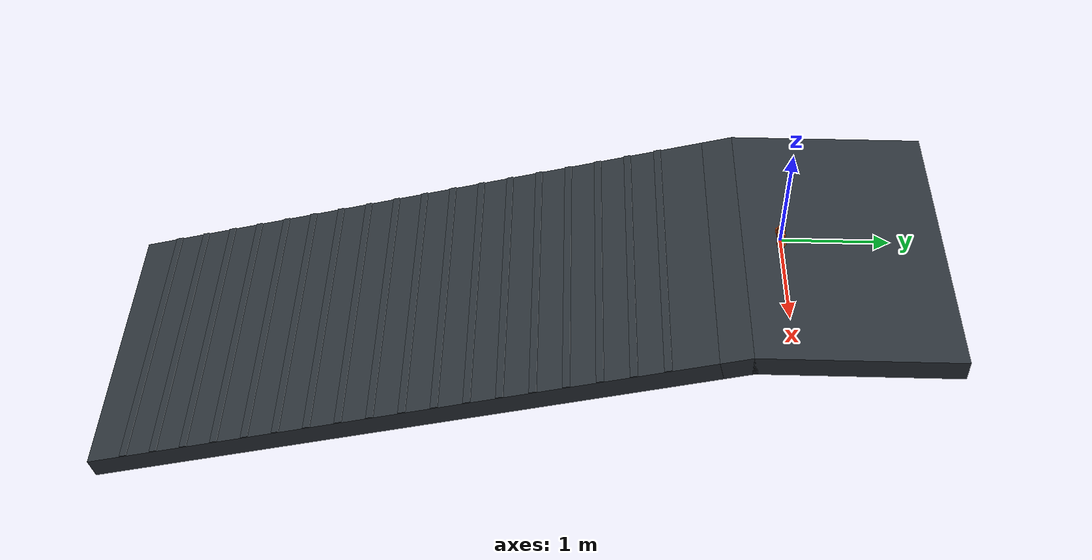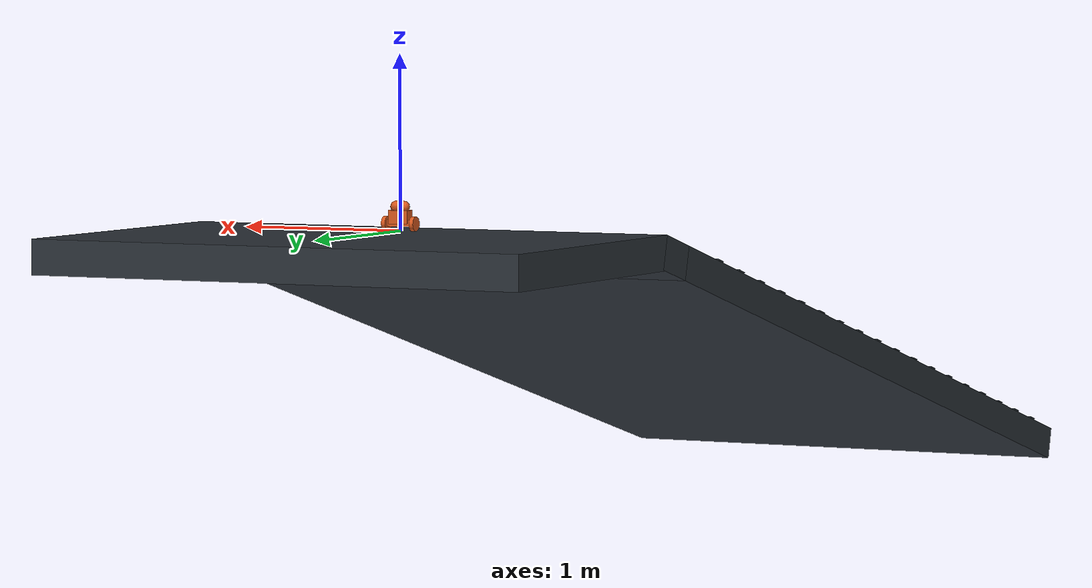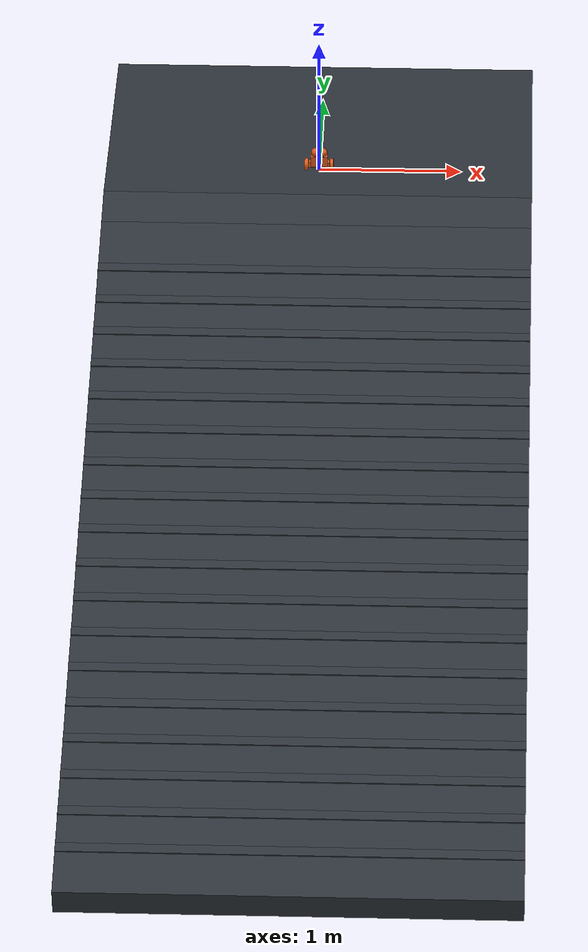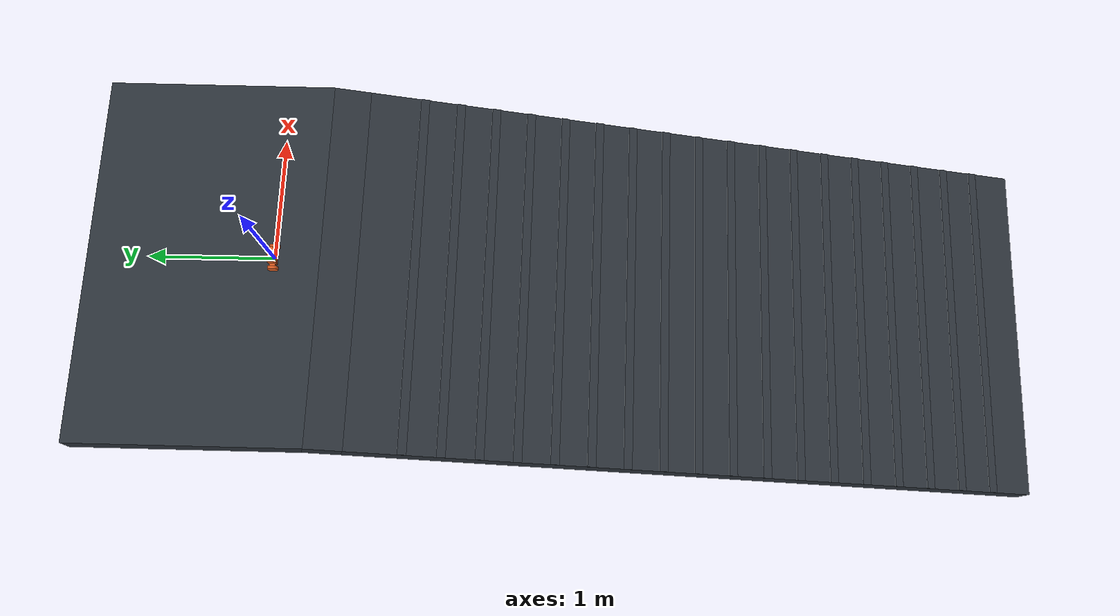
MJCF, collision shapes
<mujoco model="Stage4B rtrain_078_m15p0">
  <compiler angle="radian" meshdir="../../../../assets/upstream_local" />
  <option timestep="0.001" integrator="implicitfast" gravity="0 0 -9.81" />
  <statistic center="0 0 0.05" extent="0.28" />
  <default>
    <default class="visual">
      <geom contype="0" conaffinity="0" group="2" />
    </default>
    <default class="collision">
      <geom group="3" rgba="0.85 0.35 0.12 0.25" solref="0.005 1" solimp="0.9 0.95 0.001" />
    </default>
  </default>
  <asset>
    <texture name="ground_tex" type="2d" builtin="checker" rgb1="0.22 0.25 0.28" rgb2="0.12 0.14 0.16" width="256" height="256" />
    <material name="ground_mat" texture="ground_tex" texrepeat="4 4" reflectance="0.15" />
    <mesh name="main_frame_mesh" file="main_frame.stl" scale="0.001 0.001 0.001" />
    <mesh name="wheel_base_mesh" file="wheel_base.stl" scale="0.001 0.001 0.001" />
    <mesh name="cover_mesh" file="cover.stl" scale="0.001 0.001 0.001" />
    <mesh name="motor_left_mesh" file="motor_left.stl" scale="0.001 0.001 0.001" />
    <mesh name="motor_right_mesh" file="motor_right.stl" scale="0.001 0.001 0.001" />
    <mesh name="mc33926_mesh" file="mc33926.stl" scale="0.001 0.001 0.001" />
    <mesh name="wheel_mesh" file="wheel.stl" scale="0.001 0.001 0.001" />
    <mesh name="adapter_left_mesh" file="adapter_left.stl" scale="0.001 0.001 0.001" />
    <mesh name="adapter_right_mesh" file="adapter_right.stl" scale="0.001 0.001 0.001" />
  </asset>
  <worldbody>
    <light pos="0 -0.5 0.8" dir="0 0.6 -1" diffuse="0.8 0.8 0.8" />
    <geom name="terrain_flat" type="box" pos="0 0.575 -0.1" size="1.5 0.925 0.1" material="ground_mat" friction="0.10396593 0.005 0.0001" condim="3" />
    <geom name="terrain_transition" type="box" pos="0 -0.469006969433 -0.135415439394" euler="0.261799387799 0 0" size="1.5 0.15 0.1" material="ground_mat" friction="0.10396593 0.005 0.0001" condim="3" />
    <geom name="terrain_constant_grade" type="box" pos="0 -3.51167332224 -0.950695431467" euler="0.261799387799 0 0" size="1.5 3 0.1" material="ground_mat" friction="0.10396593 0.005 0.0001" condim="3" />
    <geom name="terrain_rough_00" type="box" pos="0 -1.07565217174 -0.189606705301" euler="0.261799387799 0 0" size="1.5 0.0355033957139 0.00466658867906" material="ground_mat" friction="0.10396593 0.005 0.0001" condim="3" />
    <geom name="terrain_rough_01" type="box" pos="0 -1.37023646616 -0.268540329094" euler="0.261799387799 0 0" size="1.5 0.0355033957139 0.00466658867906" material="ground_mat" friction="0.10396593 0.005 0.0001" condim="3" />
    <geom name="terrain_rough_02" type="box" pos="0 -1.66482076058 -0.347473952887" euler="0.261799387799 0 0" size="1.5 0.0355033957139 0.00466658867906" material="ground_mat" friction="0.10396593 0.005 0.0001" condim="3" />
    <geom name="terrain_rough_03" type="box" pos="0 -1.959405055 -0.42640757668" euler="0.261799387799 0 0" size="1.5 0.0355033957139 0.00466658867906" material="ground_mat" friction="0.10396593 0.005 0.0001" condim="3" />
    <geom name="terrain_rough_04" type="box" pos="0 -2.25398934942 -0.505341200472" euler="0.261799387799 0 0" size="1.5 0.0355033957139 0.00466658867906" material="ground_mat" friction="0.10396593 0.005 0.0001" condim="3" />
    <geom name="terrain_rough_05" type="box" pos="0 -2.54857364384 -0.584274824265" euler="0.261799387799 0 0" size="1.5 0.0355033957139 0.00466658867906" material="ground_mat" friction="0.10396593 0.005 0.0001" condim="3" />
    <geom name="terrain_rough_06" type="box" pos="0 -2.84315793826 -0.663208448058" euler="0.261799387799 0 0" size="1.5 0.0355033957139 0.00466658867906" material="ground_mat" friction="0.10396593 0.005 0.0001" condim="3" />
    <geom name="terrain_rough_07" type="box" pos="0 -3.13774223269 -0.742142071851" euler="0.261799387799 0 0" size="1.5 0.0355033957139 0.00466658867906" material="ground_mat" friction="0.10396593 0.005 0.0001" condim="3" />
    <geom name="terrain_rough_08" type="box" pos="0 -3.43232652711 -0.821075695644" euler="0.261799387799 0 0" size="1.5 0.0355033957139 0.00466658867906" material="ground_mat" friction="0.10396593 0.005 0.0001" condim="3" />
    <geom name="terrain_rough_09" type="box" pos="0 -3.72691082153 -0.900009319437" euler="0.261799387799 0 0" size="1.5 0.0355033957139 0.00466658867906" material="ground_mat" friction="0.10396593 0.005 0.0001" condim="3" />
    <geom name="terrain_rough_10" type="box" pos="0 -4.02149511595 -0.978942943229" euler="0.261799387799 0 0" size="1.5 0.0355033957139 0.00466658867906" material="ground_mat" friction="0.10396593 0.005 0.0001" condim="3" />
    <geom name="terrain_rough_11" type="box" pos="0 -4.31607941037 -1.05787656702" euler="0.261799387799 0 0" size="1.5 0.0355033957139 0.00466658867906" material="ground_mat" friction="0.10396593 0.005 0.0001" condim="3" />
    <geom name="terrain_rough_12" type="box" pos="0 -4.61066370479 -1.13681019082" euler="0.261799387799 0 0" size="1.5 0.0355033957139 0.00466658867906" material="ground_mat" friction="0.10396593 0.005 0.0001" condim="3" />
    <geom name="terrain_rough_13" type="box" pos="0 -4.90524799921 -1.21574381461" euler="0.261799387799 0 0" size="1.5 0.0355033957139 0.00466658867906" material="ground_mat" friction="0.10396593 0.005 0.0001" condim="3" />
    <geom name="terrain_rough_14" type="box" pos="0 -5.19983229363 -1.2946774384" euler="0.261799387799 0 0" size="1.5 0.0355033957139 0.00466658867906" material="ground_mat" friction="0.10396593 0.005 0.0001" condim="3" />
    <geom name="terrain_rough_15" type="box" pos="0 -5.49441658805 -1.37361106219" euler="0.261799387799 0 0" size="1.5 0.0355033957139 0.00466658867906" material="ground_mat" friction="0.10396593 0.005 0.0001" condim="3" />
    <geom name="terrain_rough_16" type="box" pos="0 -5.78900088247 -1.45254468599" euler="0.261799387799 0 0" size="1.5 0.0355033957139 0.00466658867906" material="ground_mat" friction="0.10396593 0.005 0.0001" condim="3" />
    <geom name="terrain_rough_17" type="box" pos="0 -6.08358517689 -1.53147830978" euler="0.261799387799 0 0" size="1.5 0.0355033957139 0.00466658867906" material="ground_mat" friction="0.10396593 0.005 0.0001" condim="3" />
    <body name="chassis" pos="0 0 0.043">
      <freejoint name="root" />
      <inertial pos="0.0001592717873 -0.001394466535 0.03368627387" mass="0.8173706489" fullinertia="0.0009508052638 0.001636345835 0.0009938057434 -1.163464906e-07 -4.840496598e-06 3.454944565e-05" />
      <geom name="main_frame_visual" class="visual" type="mesh" mesh="main_frame_mesh" rgba="0.12 0.42 0.72 1" />
      <geom name="wheel_base_visual" class="visual" type="mesh" mesh="wheel_base_mesh" rgba="0.95 0.50 0.10 1" />
      <geom name="cover_visual" class="visual" type="mesh" mesh="cover_mesh" rgba="0.18 0.72 0.32 0.72" />
      <geom name="motor_left_visual" class="visual" type="mesh" mesh="motor_left_mesh" rgba="0.45 0.47 0.50 1" />
      <geom name="motor_right_visual" class="visual" type="mesh" mesh="motor_right_mesh" rgba="0.45 0.47 0.50 1" />
      <geom name="mc33926_visual" class="visual" type="mesh" mesh="mc33926_mesh" rgba="0.08 0.36 0.18 1" />
      <geom name="battery_1_visual" class="visual" type="box" pos="0 -0.012 0.038" size="0.035 0.007 0.025" rgba="0.15 0.25 0.75 1" />
      <geom name="battery_2_visual" class="visual" type="box" pos="0 0.012 0.038" size="0.035 0.007 0.025" rgba="0.15 0.25 0.75 1" />
      <geom name="electronics_lump_visual" class="visual" type="box" pos="0 -0.024 0.067" size="0.035 0.006 0.0425" rgba="0.10 0.42 0.20 0.65" />
      <geom name="wheel_base_collision" class="collision" type="box" pos="0 0.0005 0.0042" size="0.074 0.0201 0.0198" />
      <geom name="lower_chassis_collision" class="collision" type="box" pos="0.001 -0.0015 0.038" size="0.0595 0.0325 0.038" />
      <geom name="upper_chassis_collision" class="collision" type="capsule" fromto="-0.024 -0.0015 0.096 0.026 -0.0015 0.096" size="0.033" />
      <site name="imu_site" type="box" pos="0 0 0.020" quat="1 0 0 0" size="0.004 0.003 0.001" rgba="1 0.15 0.05 1" />
      <body name="left_wheel" pos="-0.0885 0 0">
        <joint name="left_wheel_hinge" type="hinge" axis="1 0 0" damping="0.002" frictionloss="0.002" />
        <inertial pos="0.001407549168 -2.310217342e-08 4.024972882e-05" mass="0.1051" fullinertia="8.559060347e-05 4.760138372e-05 4.763051958e-05 2.677568832e-11 -3.525425309e-08 -1.463149106e-11" />
        <geom name="left_wheel_visual" class="visual" type="mesh" mesh="wheel_mesh" rgba="0.04 0.05 0.06 1" />
        <geom name="left_adapter_visual" class="visual" type="mesh" mesh="adapter_left_mesh" rgba="0.12 0.48 0.82 1" />
        <geom name="left_wheel_collision" class="collision" type="cylinder" size="0.042 0.012" quat="0.7071067812 0 0.7071067812 0" friction="0.10396593 0.005 0.0001" />
      </body>
      <body name="right_wheel" pos="0.0885 0 0">
        <joint name="right_wheel_hinge" type="hinge" axis="1 0 0" damping="0.002" frictionloss="0.002" />
        <inertial pos="-0.001407437868 -2.310217342e-08 -4.019113045e-05" mass="0.1051" fullinertia="8.559060397e-05 4.760141714e-05 4.763055251e-05 -2.601653908e-11 -3.526339188e-08 1.57007511e-11" />
        <geom name="right_wheel_visual" class="visual" type="mesh" mesh="wheel_mesh" rgba="0.04 0.05 0.06 1" />
        <geom name="right_adapter_visual" class="visual" type="mesh" mesh="adapter_right_mesh" rgba="0.12 0.48 0.82 1" />
        <geom name="right_wheel_collision" class="collision" type="cylinder" size="0.042 0.012" quat="0.7071067812 0 0.7071067812 0" friction="0.10396593 0.005 0.0001" />
      </body>
    </body>
  </worldbody>
  <actuator>
    <motor name="left_wheel_torque" joint="left_wheel_hinge" gear="1" ctrllimited="true" ctrlrange="-0.63 0.63" forcelimited="true" forcerange="-0.63 0.63" />
    <motor name="right_wheel_torque" joint="right_wheel_hinge" gear="1" ctrllimited="true" ctrlrange="-0.63 0.63" forcelimited="true" forcerange="-0.63 0.63" />
  </actuator>
  <sensor>
    <accelerometer name="imu_accelerometer" site="imu_site" />
    <gyro name="imu_gyro" site="imu_site" />
    <jointpos name="left_wheel_angle" joint="left_wheel_hinge" />
    <jointpos name="right_wheel_angle" joint="right_wheel_hinge" />
  </sensor>
  <keyframe>
    <key name="upright" qpos="0 0 0.043 1 0 0 0 0 0" />
  </keyframe>
</mujoco>
